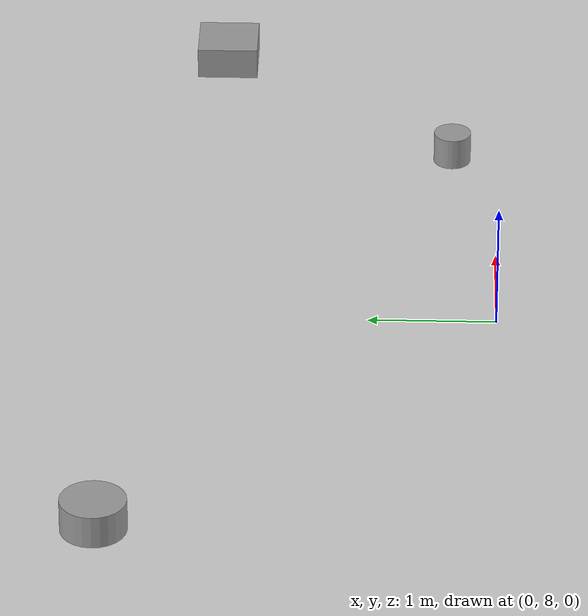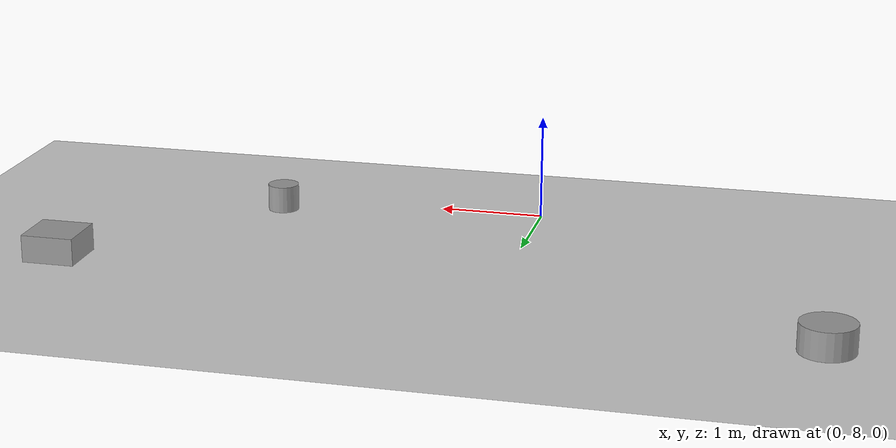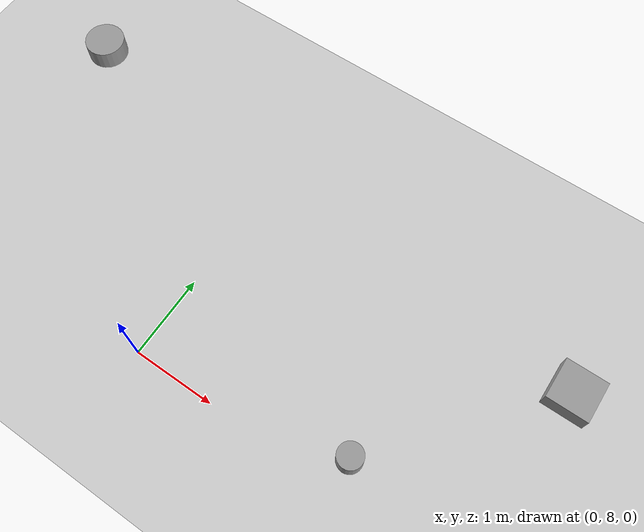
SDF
<sdf version="1.6">
 <world name="default">
  <model name="ground_plane">
   <static>1</static>
   <link name="link">
    <collision name="collision">
     <geometry><plane><normal>0 0 1</normal><size>30 30</size></plane></geometry>
     <surface>
      <contact><collide_bitmask>65535</collide_bitmask></contact>
      <friction><ode><mu>100</mu><mu2>50</mu2></ode></friction>
     </surface>
     <max_contacts>15</max_contacts>
    </collision>
    <visual name="visual">
     <cast_shadows>0</cast_shadows>
     <geometry><plane><normal>0 0 1</normal><size>30 30</size></plane></geometry>
     <material>
      <script><uri>file://media/materials/scripts/gazebo.material</uri><name>Gazebo/Grey</name></script>
     </material>
    </visual>
   </link>
  </model>
  <model name="cylinder_d=50">
   <link name="link_0">
    <inertial>
     <mass>1</mass>
     <inertia><ixx>0.145833</ixx><ixy>0</ixy><ixz>0</ixz><iyy>0.145833</iyy><iyz>0</iyz><izz>0.125</izz></inertia>
    </inertial>
    <pose>-2.95 10.95 0 0 -0 0</pose>
    <visual name="visual">
     <geometry><cylinder><radius>0.25</radius><length>0.5</length></cylinder></geometry>
     <material>
      <lighting>1</lighting>
      <script><uri>file://media/materials/scripts/gazebo.material</uri><name>Gazebo/Grey</name></script>
      <shader type="vertex"><normal_map>__default__</normal_map></shader>
      <ambient>0.3 0.3 0.3 1</ambient>
      <diffuse>0.7 0.7 0.7 1</diffuse>
      <specular>0.01 0.01 0.01 1</specular>
      <emissive>0 0 0 1</emissive>
     </material>
    </visual>
    <collision name="collision">
     <geometry><cylinder><radius>0.25</radius><length>0.5</length></cylinder></geometry>
     <surface>
      <friction>
       <ode><mu>1</mu><mu2>1</mu2><fdir1>0 0 0</fdir1><slip1>0</slip1><slip2>0</slip2></ode>
       <torsional>
        <coefficient>1</coefficient>
        <patch_radius>0</patch_radius>
        <surface_radius>0</surface_radius>
        <use_patch_radius>1</use_patch_radius>
        <ode><slip>0</slip></ode>
       </torsional>
      </friction>
      <bounce><restitution_coefficient>0</restitution_coefficient><threshold>1e+06</threshold></bounce>
      <contact>
       <collide_without_contact>0</collide_without_contact>
       <collide_without_contact_bitmask>1</collide_without_contact_bitmask>
       <collide_bitmask>1</collide_bitmask>
       <ode>
        <soft_cfm>0</soft_cfm>
        <soft_erp>0.2</soft_erp>
        <kp>1e+13</kp>
        <kd>1</kd>
        <max_vel>0.01</max_vel>
        <min_depth>0</min_depth>
       </ode>
       <bullet>
        <split_impulse>1</split_impulse>
        <split_impulse_penetration_threshold>-0.01</split_impulse_penetration_threshold>
        <soft_cfm>0</soft_cfm>
        <soft_erp>0.2</soft_erp>
        <kp>1e+13</kp>
        <kd>1</kd>
       </bullet>
      </contact>
     </surface>
    </collision>
   </link>
   <static>0</static>
  </model>
  <model name="box_d=50">
   <link name="link_2">
    <inertial>
     <mass>1</mass>
     <inertia>
      <ixx>0.166667</ixx>
      <ixy>0</ixy>
      <ixz>0</ixz>
      <iyy>0.166667</iyy>
      <iyz>0</iyz>
      <izz>0.166667</izz>
     </inertia>
    </inertial>
    <pose>4.15 10.25 0 0 -0 0</pose>
    <visual name="visual">
     <geometry><box><size>0.5 0.5 0.5</size></box></geometry>
     <material>
      <lighting>1</lighting>
      <script><uri>file://media/materials/scripts/gazebo.material</uri><name>Gazebo/Grey</name></script>
      <shader type="vertex"><normal_map>__default__</normal_map></shader>
      <ambient>0.3 0.3 0.3 1</ambient>
      <diffuse>0.7 0.7 0.7 1</diffuse>
      <specular>0.01 0.01 0.01 1</specular>
      <emissive>0 0 0 1</emissive>
     </material>
    </visual>
    <collision name="collision">
     <geometry><box><size>0.5 0.5 0.5</size></box></geometry>
     <surface>
      <friction>
       <ode><mu>1</mu><mu2>1</mu2><fdir1>0 0 0</fdir1><slip1>0</slip1><slip2>0</slip2></ode>
       <torsional>
        <coefficient>1</coefficient>
        <patch_radius>0</patch_radius>
        <surface_radius>0</surface_radius>
        <use_patch_radius>1</use_patch_radius>
        <ode><slip>0</slip></ode>
       </torsional>
      </friction>
      <bounce><restitution_coefficient>0</restitution_coefficient><threshold>1e+06</threshold></bounce>
      <contact>
       <collide_without_contact>0</collide_without_contact>
       <collide_without_contact_bitmask>1</collide_without_contact_bitmask>
       <collide_bitmask>1</collide_bitmask>
       <ode>
        <soft_cfm>0</soft_cfm>
        <soft_erp>0.2</soft_erp>
        <kp>1e+13</kp>
        <kd>1</kd>
        <max_vel>0.01</max_vel>
        <min_depth>0</min_depth>
       </ode>
       <bullet>
        <split_impulse>1</split_impulse>
        <split_impulse_penetration_threshold>-0.01</split_impulse_penetration_threshold>
        <soft_cfm>0</soft_cfm>
        <soft_erp>0.2</soft_erp>
        <kp>1e+13</kp>
        <kd>1</kd>
       </bullet>
      </contact>
     </surface>
    </collision>
   </link>
   <static>0</static>
  </model>
  <model name="cylinder_d=30">
   <link name="link_0">
    <inertial>
     <mass>1</mass>
     <inertia><ixx>0.145833</ixx><ixy>0</ixy><ixz>0</ixz><iyy>0.145833</iyy><iyz>0</iyz><izz>0.125</izz></inertia>
    </inertial>
    <pose>2.55 8.35 0 0 -0 0</pose>
    <visual name="visual">
     <geometry><cylinder><radius>0.15</radius><length>0.5</length></cylinder></geometry>
     <material>
      <lighting>1</lighting>
      <script><uri>file://media/materials/scripts/gazebo.material</uri><name>Gazebo/Grey</name></script>
      <shader type="vertex"><normal_map>__default__</normal_map></shader>
      <ambient>0.3 0.3 0.3 1</ambient>
      <diffuse>0.7 0.7 0.7 1</diffuse>
      <specular>0.01 0.01 0.01 1</specular>
      <emissive>0 0 0 1</emissive>
     </material>
    </visual>
    <collision name="collision">
     <geometry><cylinder><radius>0.15</radius><length>0.5</length></cylinder></geometry>
     <surface>
      <friction>
       <ode><mu>1</mu><mu2>1</mu2><fdir1>0 0 0</fdir1><slip1>0</slip1><slip2>0</slip2></ode>
       <torsional>
        <coefficient>1</coefficient>
        <patch_radius>0</patch_radius>
        <surface_radius>0</surface_radius>
        <use_patch_radius>1</use_patch_radius>
        <ode><slip>0</slip></ode>
       </torsional>
      </friction>
      <bounce><restitution_coefficient>0</restitution_coefficient><threshold>1e+06</threshold></bounce>
      <contact>
       <collide_without_contact>0</collide_without_contact>
       <collide_without_contact_bitmask>1</collide_without_contact_bitmask>
       <collide_bitmask>1</collide_bitmask>
       <ode>
        <soft_cfm>0</soft_cfm>
        <soft_erp>0.2</soft_erp>
        <kp>1e+13</kp>
        <kd>1</kd>
        <max_vel>0.01</max_vel>
        <min_depth>0</min_depth>
       </ode>
       <bullet>
        <split_impulse>1</split_impulse>
        <split_impulse_penetration_threshold>-0.01</split_impulse_penetration_threshold>
        <soft_cfm>0</soft_cfm>
        <soft_erp>0.2</soft_erp>
        <kp>1e+13</kp>
        <kd>1</kd>
       </bullet>
      </contact>
     </surface>
    </collision>
   </link>
   <static>0</static>
  </model>
 </world>
</sdf>
